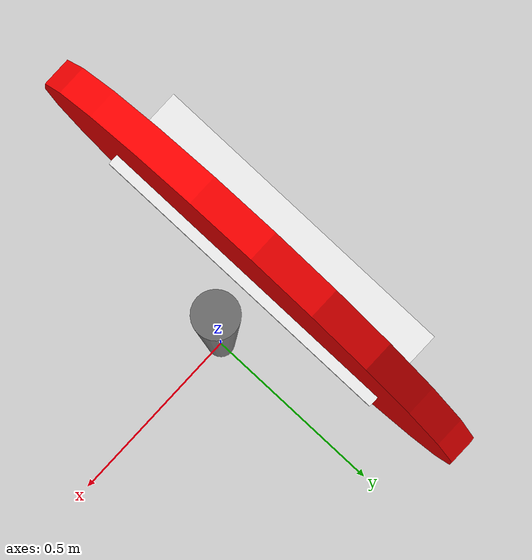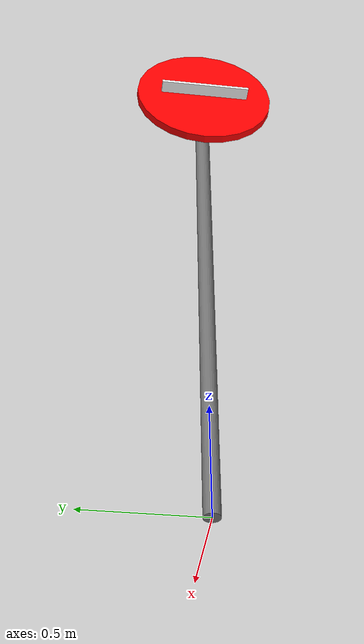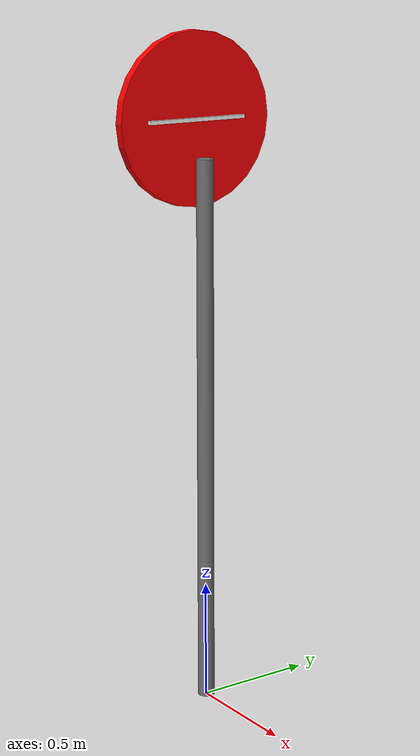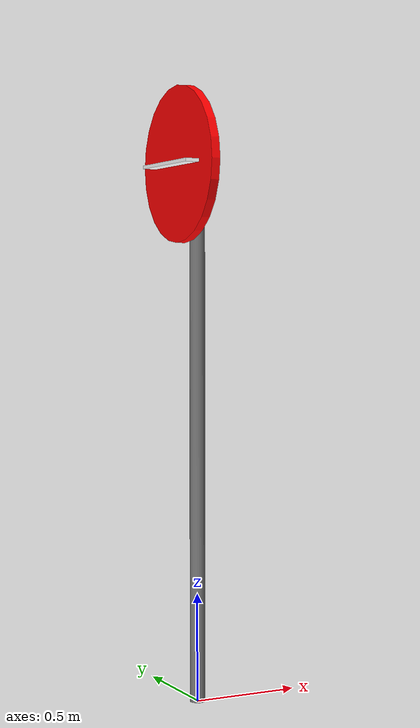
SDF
<?xml version="1.0"?>
<sdf version="1.9">
  <model name="stop_sign_model">
    <static>true</static>

    <link name="stop_sign_link">

      <visual name="pole_visual">
        <pose>0 0 1.15 0 0 0</pose>
        <geometry>
          <cylinder>
            <radius>0.035</radius>
            <length>2.3</length>
          </cylinder>
        </geometry>
        <material>
          <ambient>0.45 0.45 0.45 1</ambient>
          <diffuse>0.45 0.45 0.45 1</diffuse>
        </material>
      </visual>

      <visual name="sign_board">
        <pose>-0.08 0 2.45 0 1.5708 0</pose>
        <geometry>
          <cylinder>
            <radius>0.35</radius>
            <length>0.04</length>
            <segments>8</segments>
          </cylinder>
        </geometry>
        <material>
          <ambient>1 0 0 1</ambient>
          <diffuse>1 0 0 1</diffuse>
          <emissive>0.3 0 0 1</emissive>
        </material>
      </visual>

      <visual name="sign_center_white">
        <pose>-0.105 0 2.45 0 1.5708 0</pose>
        <geometry>
          <box>
            <size>0.015 0.45 0.12</size>
          </box>
        </geometry>
        <material>
          <ambient>1 1 1 1</ambient>
          <diffuse>1 1 1 1</diffuse>
          <emissive>0.4 0.4 0.4 1</emissive>
        </material>
      </visual>

      <collision name="stop_sign_collision">
        <pose>0 0 1.4 0 0 0</pose>
        <geometry>
          <box>
            <size>0.5 0.5 2.8</size>
          </box>
        </geometry>
      </collision>

    </link>
  </model>
</sdf>
